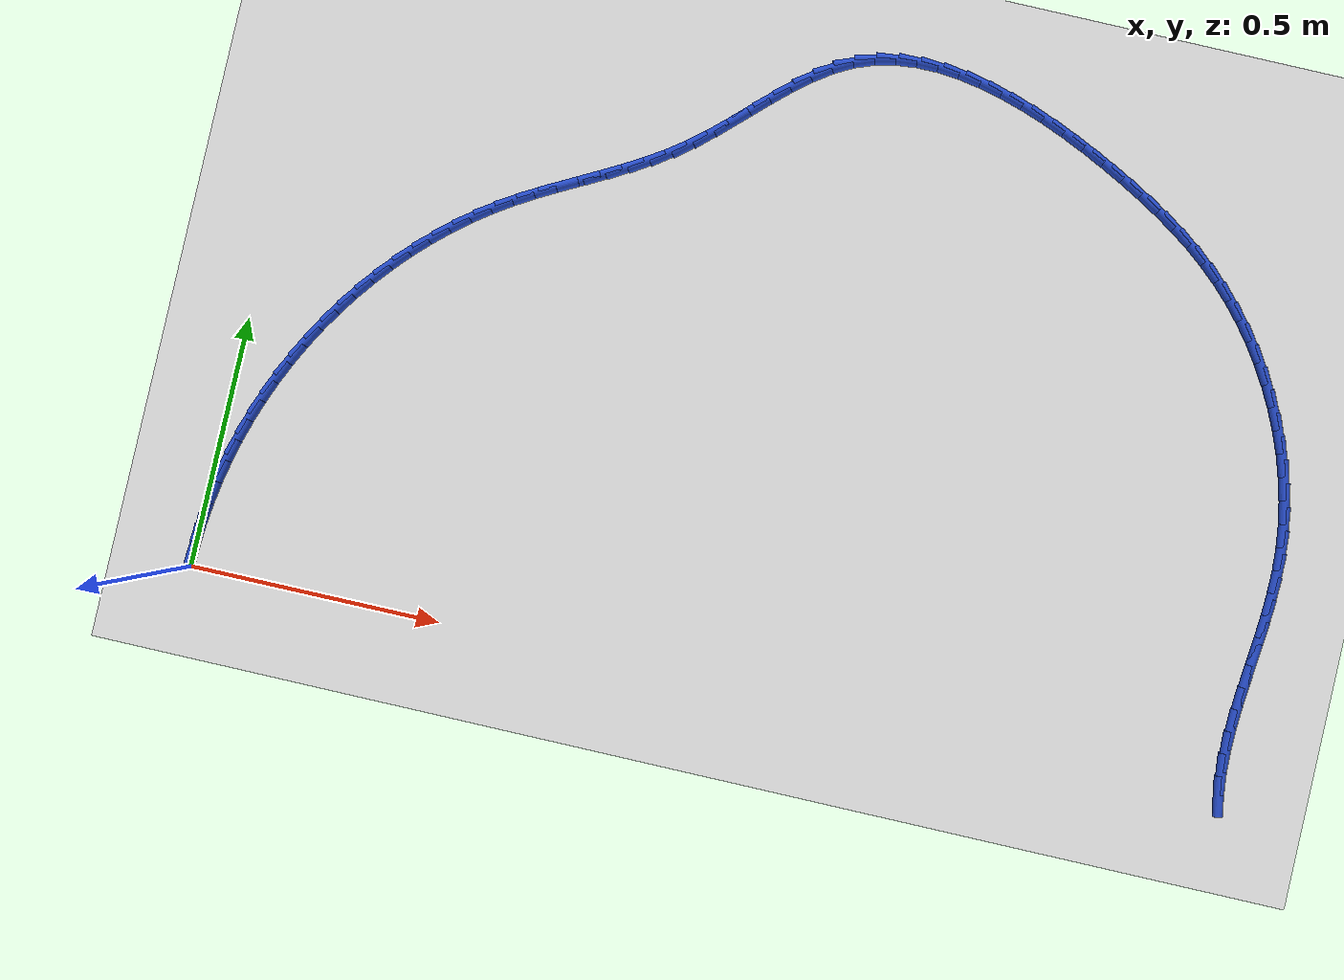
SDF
<sdf version="1.6">
 <world name="default">
  <model name="ground_plane">
   <static>1</static>
   <link name="link">
    <collision name="collision">
     <geometry><plane><normal>0 0 1</normal><size>100 100</size></plane></geometry>
     <surface><friction><ode><mu>100</mu><mu2>50</mu2></ode></friction></surface>
    </collision>
    <visual name="visual">
     <cast_shadows>0</cast_shadows>
     <geometry><plane><normal>0 0 1</normal><size>100 100</size></plane></geometry>
     <material>
      <script><uri>file://media/materials/scripts/gazebo.material</uri><name>Gazebo/WhiteGlow</name></script>
     </material>
    </visual>
   </link>
  </model>
  <model name="line">
   <link name="link_1">
    <pose>0.0012274226117992713 0.045461815861796415 0.01 0 1.57 1.5002485109680428</pose>
    <collision name="collision">
     <geometry><cylinder><radius>0.01</radius><length>0.08</length></cylinder></geometry>
    </collision>
    <visual name="visual">
     <material>
      <script><name>Gazebo/Blue</name><uri>file://media/materials/scripts/gazebo.material</uri></script>
     </material>
     <geometry><cylinder><radius>0.01</radius><length>0.08</length></cylinder></geometry>
    </visual>
   </link>
   <link name="link_2">
    <pose>0.004426673905857419 0.09073525123194078 0.01 0 1.57 1.456372147194954</pose>
    <collision name="collision">
     <geometry><cylinder><radius>0.01</radius><length>0.08</length></cylinder></geometry>
    </collision>
    <visual name="visual">
     <material>
      <script><name>Gazebo/Blue</name><uri>file://media/materials/scripts/gazebo.material</uri></script>
     </material>
     <geometry><cylinder><radius>0.01</radius><length>0.08</length></cylinder></geometry>
    </visual>
   </link>
   <link name="link_3">
    <pose>0.00960134744828331 0.13576131135203842 0.01 0 1.57 1.4121729207926326</pose>
    <collision name="collision">
     <geometry><cylinder><radius>0.01</radius><length>0.08</length></cylinder></geometry>
    </collision>
    <visual name="visual">
     <material>
      <script><name>Gazebo/Blue</name><uri>file://media/materials/scripts/gazebo.material</uri></script>
     </material>
     <geometry><cylinder><radius>0.01</radius><length>0.08</length></cylinder></geometry>
    </visual>
   </link>
   <link name="link_4">
    <pose>0.016755036805185752 0.18048100146369445 0.01 0 1.57 1.367653221788567</pose>
    <collision name="collision">
     <geometry><cylinder><radius>0.01</radius><length>0.08</length></cylinder></geometry>
    </collision>
    <visual name="visual">
     <material>
      <script><name>Gazebo/Blue</name><uri>file://media/materials/scripts/gazebo.material</uri></script>
     </material>
     <geometry><cylinder><radius>0.01</radius><length>0.08</length></cylinder></geometry>
    </visual>
   </link>
   <link name="link_5">
    <pose>0.02589133554267359 0.22483532680851429 0.01 0 1.57 1.322820274719058</pose>
    <collision name="collision">
     <geometry><cylinder><radius>0.01</radius><length>0.08</length></cylinder></geometry>
    </collision>
    <visual name="visual">
     <material>
      <script><name>Gazebo/Blue</name><uri>file://media/materials/scripts/gazebo.material</uri></script>
     </material>
     <geometry><cylinder><radius>0.01</radius><length>0.08</length></cylinder></geometry>
    </visual>
   </link>
   <link name="link_6">
    <pose>0.03701383722685566 0.26876529262810317 0.01 0 1.57 1.2776866372692732</pose>
    <collision name="collision">
     <geometry><cylinder><radius>0.01</radius><length>0.08</length></cylinder></geometry>
    </collision>
    <visual name="visual">
     <material>
      <script><name>Gazebo/Blue</name><uri>file://media/materials/scripts/gazebo.material</uri></script>
     </material>
     <geometry><cylinder><radius>0.01</radius><length>0.08</length></cylinder></geometry>
    </visual>
   </link>
   <link name="link_7">
    <pose>0.05012613542384077 0.31221190416406625 0.01 0 1.57 1.232270625870829</pose>
    <collision name="collision">
     <geometry><cylinder><radius>0.01</radius><length>0.08</length></cylinder></geometry>
    </collision>
    <visual name="visual">
     <material>
      <script><name>Gazebo/Blue</name><uri>file://media/materials/scripts/gazebo.material</uri></script>
     </material>
     <geometry><cylinder><radius>0.01</radius><length>0.08</length></cylinder></geometry>
    </visual>
   </link>
   <link name="link_8">
    <pose>0.06523182369973775 0.35511616665800894 0.01 0 1.57 1.186603532275354</pose>
    <collision name="collision">
     <geometry><cylinder><radius>0.01</radius><length>0.08</length></cylinder></geometry>
    </collision>
    <visual name="visual">
     <material>
      <script><name>Gazebo/Blue</name><uri>file://media/materials/scripts/gazebo.material</uri></script>
     </material>
     <geometry><cylinder><radius>0.01</radius><length>0.08</length></cylinder></geometry>
    </visual>
   </link>
   <link name="link_9">
    <pose>0.08233400079786048 0.3974186996037792 0.01 0 1.57 1.1410511294377066</pose>
    <collision name="collision">
     <geometry><cylinder><radius>0.01</radius><length>0.08</length></cylinder></geometry>
    </collision>
    <visual name="visual">
     <material>
      <script><name>Gazebo/Blue</name><uri>file://media/materials/scripts/gazebo.material</uri></script>
     </material>
     <geometry><cylinder><radius>0.01</radius><length>0.08</length></cylinder></geometry>
    </visual>
   </link>
   <link name="link_10">
    <pose>0.10140935679296745 0.43903953515613786 0.01 0 1.57 1.0960086770704474</pose>
    <collision name="collision">
     <geometry><cylinder><radius>0.01</radius><length>0.08</length></cylinder></geometry>
    </collision>
    <visual name="visual">
     <material>
      <script><name>Gazebo/Blue</name><uri>file://media/materials/scripts/gazebo.material</uri></script>
     </material>
     <geometry><cylinder><radius>0.01</radius><length>0.08</length></cylinder></geometry>
    </visual>
   </link>
   <link name="link_11">
    <pose>0.12239543092023891 0.47986818474865683 0.01 0 1.57 1.0513154567760972</pose>
    <collision name="collision">
     <geometry><cylinder><radius>0.01</radius><length>0.08</length></cylinder></geometry>
    </collision>
    <visual name="visual">
     <material>
      <script><name>Gazebo/Blue</name><uri>file://media/materials/scripts/gazebo.material</uri></script>
     </material>
     <geometry><cylinder><radius>0.01</radius><length>0.08</length></cylinder></geometry>
    </visual>
   </link>
   <link name="link_12">
    <pose>0.14522659465992305 0.5197916903361917 0.01 0 1.57 1.0067676363513318</pose>
    <collision name="collision">
     <geometry><cylinder><radius>0.01</radius><length>0.08</length></cylinder></geometry>
    </collision>
    <visual name="visual">
     <material>
      <script><name>Gazebo/Blue</name><uri>file://media/materials/scripts/gazebo.material</uri></script>
     </material>
     <geometry><cylinder><radius>0.01</radius><length>0.08</length></cylinder></geometry>
    </visual>
   </link>
   <link name="link_13">
    <pose>0.16983721949226793 0.5586970938735976 0.01 0 1.57 0.9621625291410923</pose>
    <collision name="collision">
     <geometry><cylinder><radius>0.01</radius><length>0.08</length></cylinder></geometry>
    </collision>
    <visual name="visual">
     <material>
      <script><name>Gazebo/Blue</name><uri>file://media/materials/scripts/gazebo.material</uri></script>
     </material>
     <geometry><cylinder><radius>0.01</radius><length>0.08</length></cylinder></geometry>
    </visual>
   </link>
   <link name="link_14">
    <pose>0.19616167689752204 0.5964714373157305 0.01 0 1.57 0.9172986936262948</pose>
    <collision name="collision">
     <geometry><cylinder><radius>0.01</radius><length>0.08</length></cylinder></geometry>
    </collision>
    <visual name="visual">
     <material>
      <script><name>Gazebo/Blue</name><uri>file://media/materials/scripts/gazebo.material</uri></script>
     </material>
     <geometry><cylinder><radius>0.01</radius><length>0.08</length></cylinder></geometry>
    </visual>
   </link>
   <link name="link_15">
    <pose>0.22413433835593333 0.6330017626174453 0.01 0 1.57 0.8719761058308376</pose>
    <collision name="collision">
     <geometry><cylinder><radius>0.01</radius><length>0.08</length></cylinder></geometry>
    </collision>
    <visual name="visual">
     <material>
      <script><name>Gazebo/Blue</name><uri>file://media/materials/scripts/gazebo.material</uri></script>
     </material>
     <geometry><cylinder><radius>0.01</radius><length>0.08</length></cylinder></geometry>
    </visual>
   </link>
   <link name="link_16">
    <pose>0.25368957534775016 0.6681751117335978 0.01 0 1.57 0.8259965544912151</pose>
    <collision name="collision">
     <geometry><cylinder><radius>0.01</radius><length>0.08</length></cylinder></geometry>
    </collision>
    <visual name="visual">
     <material>
      <script><name>Gazebo/Blue</name><uri>file://media/materials/scripts/gazebo.material</uri></script>
     </material>
     <geometry><cylinder><radius>0.01</radius><length>0.08</length></cylinder></geometry>
    </visual>
   </link>
   <link name="link_17">
    <pose>0.28476175935322073 0.7018785266190436 0.01 0 1.57 0.7791644137322374</pose>
    <collision name="collision">
     <geometry><cylinder><radius>0.01</radius><length>0.08</length></cylinder></geometry>
    </collision>
    <visual name="visual">
     <material>
      <script><name>Gazebo/Blue</name><uri>file://media/materials/scripts/gazebo.material</uri></script>
     </material>
     <geometry><cylinder><radius>0.01</radius><length>0.08</length></cylinder></geometry>
    </visual>
   </link>
   <link name="link_18">
    <pose>0.31728526185259315 0.7339990492286378 0.01 0 1.57 0.7312879565658935</pose>
    <collision name="collision">
     <geometry><cylinder><radius>0.01</radius><length>0.08</length></cylinder></geometry>
    </collision>
    <visual name="visual">
     <material>
      <script><name>Gazebo/Blue</name><uri>file://media/materials/scripts/gazebo.material</uri></script>
     </material>
     <geometry><cylinder><radius>0.01</radius><length>0.08</length></cylinder></geometry>
    </visual>
   </link>
   <link name="link_19">
    <pose>0.3511944543261158 0.764423721517236 0.01 0 1.57 0.682181381445582</pose>
    <collision name="collision">
     <geometry><cylinder><radius>0.01</radius><length>0.08</length></cylinder></geometry>
    </collision>
    <visual name="visual">
     <material>
      <script><name>Gazebo/Blue</name><uri>file://media/materials/scripts/gazebo.material</uri></script>
     </material>
     <geometry><cylinder><radius>0.01</radius><length>0.08</length></cylinder></geometry>
    </visual>
   </link>
   <link name="link_20">
    <pose>0.38642370825403666 0.7930395854396936 0.01 0 1.57 0.6316677280078654</pose>
    <collision name="collision">
     <geometry><cylinder><radius>0.01</radius><length>0.08</length></cylinder></geometry>
    </collision>
    <visual name="visual">
     <material>
      <script><name>Gazebo/Blue</name><uri>file://media/materials/scripts/gazebo.material</uri></script>
     </material>
     <geometry><cylinder><radius>0.01</radius><length>0.08</length></cylinder></geometry>
    </visual>
   </link>
   <link name="link_21">
    <pose>0.4229073951166042 0.8197336829508661 0.01 0 1.57 0.5801251381507768</pose>
    <collision name="collision">
     <geometry><cylinder><radius>0.01</radius><length>0.08</length></cylinder></geometry>
    </collision>
    <visual name="visual">
     <material>
      <script><name>Gazebo/Blue</name><uri>file://media/materials/scripts/gazebo.material</uri></script>
     </material>
     <geometry><cylinder><radius>0.01</radius><length>0.08</length></cylinder></geometry>
    </visual>
   </link>
   <link name="link_22">
    <pose>0.4605715760902958 0.844416802883559 0.01 0 1.57 0.5359944190135996</pose>
    <collision name="collision">
     <geometry><cylinder><radius>0.01</radius><length>0.08</length></cylinder></geometry>
    </collision>
    <visual name="visual">
     <material>
      <script><name>Gazebo/Blue</name><uri>file://media/materials/scripts/gazebo.material</uri></script>
     </material>
     <geometry><cylinder><radius>0.01</radius><length>0.08</length></cylinder></geometry>
    </visual>
   </link>
   <link name="link_23">
    <pose>0.49921286204348236 0.8673696412066021 0.01 0 1.57 0.5062288535295115</pose>
    <collision name="collision">
     <geometry><cylinder><radius>0.01</radius><length>0.08</length></cylinder></geometry>
    </collision>
    <visual name="visual">
     <material>
      <script><name>Gazebo/Blue</name><uri>file://media/materials/scripts/gazebo.material</uri></script>
     </material>
     <geometry><cylinder><radius>0.01</radius><length>0.08</length></cylinder></geometry>
    </visual>
   </link>
   <link name="link_24">
    <pose>0.5385255362949087 0.8891652971389342 0.01 0 1.57 0.4911193388827673</pose>
    <collision name="collision">
     <geometry><cylinder><radius>0.01</radius><length>0.08</length></cylinder></geometry>
    </collision>
    <visual name="visual">
     <material>
      <script><name>Gazebo/Blue</name><uri>file://media/materials/scripts/gazebo.material</uri></script>
     </material>
     <geometry><cylinder><radius>0.01</radius><length>0.08</length></cylinder></geometry>
    </visual>
   </link>
   <link name="link_25">
    <pose>0.5782010905877437 0.910384846888824 0.01 0 1.57 0.4906473573979358</pose>
    <collision name="collision">
     <geometry><cylinder><radius>0.01</radius><length>0.08</length></cylinder></geometry>
    </collision>
    <visual name="visual">
     <material>
      <script><name>Gazebo/Blue</name><uri>file://media/materials/scripts/gazebo.material</uri></script>
     </material>
     <geometry><cylinder><radius>0.01</radius><length>0.08</length></cylinder></geometry>
    </visual>
   </link>
   <link name="link_26">
    <pose>0.6179310166651563 0.9316093666645406 0.01 0 1.57 0.5047643014628631</pose>
    <collision name="collision">
     <geometry><cylinder><radius>0.01</radius><length>0.08</length></cylinder></geometry>
    </collision>
    <visual name="visual">
     <material>
      <script><name>Gazebo/Blue</name><uri>file://media/materials/scripts/gazebo.material</uri></script>
     </material>
     <geometry><cylinder><radius>0.01</radius><length>0.08</length></cylinder></geometry>
    </visual>
   </link>
   <link name="link_27">
    <pose>0.6574068062703151 0.9534199326743527 0.01 0 1.57 0.5333949445838942</pose>
    <collision name="collision">
     <geometry><cylinder><radius>0.01</radius><length>0.08</length></cylinder></geometry>
    </collision>
    <visual name="visual">
     <material>
      <script><name>Gazebo/Blue</name><uri>file://media/materials/scripts/gazebo.material</uri></script>
     </material>
     <geometry><cylinder><radius>0.01</radius><length>0.08</length></cylinder></geometry>
    </visual>
   </link>
   <link name="link_28">
    <pose>0.6963199511463887 0.9763976211265286 0.01 0 1.57 0.5763492082743317</pose>
    <collision name="collision">
     <geometry><cylinder><radius>0.01</radius><length>0.08</length></cylinder></geometry>
    </collision>
    <visual name="visual">
     <material>
      <script><name>Gazebo/Blue</name><uri>file://media/materials/scripts/gazebo.material</uri></script>
     </material>
     <geometry><cylinder><radius>0.01</radius><length>0.08</length></cylinder></geometry>
    </visual>
   </link>
   <link name="link_29">
    <pose>0.734361943036546 1.0011235082293375 0.01 0 1.57 0.6331506874559334</pose>
    <collision name="collision">
     <geometry><cylinder><radius>0.01</radius><length>0.08</length></cylinder></geometry>
    </collision>
    <visual name="visual">
     <material>
      <script><name>Gazebo/Blue</name><uri>file://media/materials/scripts/gazebo.material</uri></script>
     </material>
     <geometry><cylinder><radius>0.01</radius><length>0.08</length></cylinder></geometry>
    </visual>
   </link>
   <link name="link_30">
    <pose>0.7712242736839553 1.0281786701910478 0.01 0 1.57 0.6967573670954323</pose>
    <collision name="collision">
     <geometry><cylinder><radius>0.01</radius><length>0.08</length></cylinder></geometry>
    </collision>
    <visual name="visual">
     <material>
      <script><name>Gazebo/Blue</name><uri>file://media/materials/scripts/gazebo.material</uri></script>
     </material>
     <geometry><cylinder><radius>0.01</radius><length>0.08</length></cylinder></geometry>
    </visual>
   </link>
   <link name="link_31">
    <pose>0.8067190815543362 1.0578793177478278 0.01 0 1.57 0.7418646541711746</pose>
    <collision name="collision">
     <geometry><cylinder><radius>0.01</radius><length>0.08</length></cylinder></geometry>
    </collision>
    <visual name="visual">
     <material>
      <script><name>Gazebo/Blue</name><uri>file://media/materials/scripts/gazebo.material</uri></script>
     </material>
     <geometry><cylinder><radius>0.01</radius><length>0.08</length></cylinder></geometry>
    </visual>
   </link>
   <link name="link_32">
    <pose>0.8411586392800531 1.0894436767974454 0.01 0 1.57 0.7632778604231394</pose>
    <collision name="collision">
     <geometry><cylinder><radius>0.01</radius><length>0.08</length></cylinder></geometry>
    </collision>
    <visual name="visual">
     <material>
      <script><name>Gazebo/Blue</name><uri>file://media/materials/scripts/gazebo.material</uri></script>
     </material>
     <geometry><cylinder><radius>0.01</radius><length>0.08</length></cylinder></geometry>
    </visual>
   </link>
   <link name="link_33">
    <pose>0.8749847981929068 1.121805498676944 0.01 0 1.57 0.7616515718498925</pose>
    <collision name="collision">
     <geometry><cylinder><radius>0.01</radius><length>0.08</length></cylinder></geometry>
    </collision>
    <visual name="visual">
     <material>
      <script><name>Gazebo/Blue</name><uri>file://media/materials/scripts/gazebo.material</uri></script>
     </material>
     <geometry><cylinder><radius>0.01</radius><length>0.08</length></cylinder></geometry>
    </visual>
   </link>
   <link name="link_34">
    <pose>0.9086394098356655 1.153898534260214 0.01 0 1.57 0.7364766078494152</pose>
    <collision name="collision">
     <geometry><cylinder><radius>0.01</radius><length>0.08</length></cylinder></geometry>
    </collision>
    <visual name="visual">
     <material>
      <script><name>Gazebo/Blue</name><uri>file://media/materials/scripts/gazebo.material</uri></script>
     </material>
     <geometry><cylinder><radius>0.01</radius><length>0.08</length></cylinder></geometry>
    </visual>
   </link>
   <link name="link_35">
    <pose>0.9425643257510968 1.1846565344211464 0.01 0 1.57 0.6860285060387574</pose>
    <collision name="collision">
     <geometry><cylinder><radius>0.01</radius><length>0.08</length></cylinder></geometry>
    </collision>
    <visual name="visual">
     <material>
      <script><name>Gazebo/Blue</name><uri>file://media/materials/scripts/gazebo.material</uri></script>
     </material>
     <geometry><cylinder><radius>0.01</radius><length>0.08</length></cylinder></geometry>
    </visual>
   </link>
   <link name="link_36">
    <pose>0.9772013974819684 1.2130132500336317 0.01 0 1.57 0.6076332740044071</pose>
    <collision name="collision">
     <geometry><cylinder><radius>0.01</radius><length>0.08</length></cylinder></geometry>
    </collision>
    <visual name="visual">
     <material>
      <script><name>Gazebo/Blue</name><uri>file://media/materials/scripts/gazebo.material</uri></script>
     </material>
     <geometry><cylinder><radius>0.01</radius><length>0.08</length></cylinder></geometry>
    </visual>
   </link>
   <link name="link_37">
    <pose>1.012992476571048 1.2379024319715608 0.01 0 1.57 0.49857385690341627</pose>
    <collision name="collision">
     <geometry><cylinder><radius>0.01</radius><length>0.08</length></cylinder></geometry>
    </collision>
    <visual name="visual">
     <material>
      <script><name>Gazebo/Blue</name><uri>file://media/materials/scripts/gazebo.material</uri></script>
     </material>
     <geometry><cylinder><radius>0.01</radius><length>0.08</length></cylinder></geometry>
    </visual>
   </link>
   <link name="link_38">
    <pose>1.0503794145611038 1.2582578311088246 0.01 0 1.57 0.3615146965251408</pose>
    <collision name="collision">
     <geometry><cylinder><radius>0.01</radius><length>0.08</length></cylinder></geometry>
    </collision>
    <visual name="visual">
     <material>
      <script><name>Gazebo/Blue</name><uri>file://media/materials/scripts/gazebo.material</uri></script>
     </material>
     <geometry><cylinder><radius>0.01</radius><length>0.08</length></cylinder></geometry>
    </visual>
   </link>
   <link name="link_39">
    <pose>1.089740830717486 1.2731416868704672 0.01 0 1.57 0.22454168957132323</pose>
    <collision name="collision">
     <geometry><cylinder><radius>0.01</radius><length>0.08</length></cylinder></geometry>
    </collision>
    <visual name="visual">
     <material>
      <script><name>Gazebo/Blue</name><uri>file://media/materials/scripts/gazebo.material</uri></script>
     </material>
     <geometry><cylinder><radius>0.01</radius><length>0.08</length></cylinder></geometry>
    </visual>
   </link>
   <link name="link_40">
    <pose>1.1309896061982043 1.282562622665678 0.01 0 1.57 0.1021054157653638</pose>
    <collision name="collision">
     <geometry><cylinder><radius>0.01</radius><length>0.08</length></cylinder></geometry>
    </collision>
    <visual name="visual">
     <material>
      <script><name>Gazebo/Blue</name><uri>file://media/materials/scripts/gazebo.material</uri></script>
     </material>
     <geometry><cylinder><radius>0.01</radius><length>0.08</length></cylinder></geometry>
    </visual>
   </link>
   <link name="link_41">
    <pose>1.1738304967151638 1.28695217466467 0.01 0 1.57 -0.004720008758100414</pose>
    <collision name="collision">
     <geometry><cylinder><radius>0.01</radius><length>0.08</length></cylinder></geometry>
    </collision>
    <visual name="visual">
     <material>
      <script><name>Gazebo/Blue</name><uri>file://media/materials/scripts/gazebo.material</uri></script>
     </material>
     <geometry><cylinder><radius>0.01</radius><length>0.08</length></cylinder></geometry>
    </visual>
   </link>
   <link name="link_42">
    <pose>1.2179672894650235 1.2867438470692596 0.01 0 1.57 -0.09657597802571115</pose>
    <collision name="collision">
     <geometry><cylinder><radius>0.01</radius><length>0.08</length></cylinder></geometry>
    </collision>
    <visual name="visual">
     <material>
      <script><name>Gazebo/Blue</name><uri>file://media/materials/scripts/gazebo.material</uri></script>
     </material>
     <geometry><cylinder><radius>0.01</radius><length>0.08</length></cylinder></geometry>
    </visual>
   </link>
   <link name="link_43">
    <pose>1.2631037716444435 1.2823711440812653 0.01 0 1.57 -0.1749719595927593</pose>
    <collision name="collision">
     <geometry><cylinder><radius>0.01</radius><length>0.08</length></cylinder></geometry>
    </collision>
    <visual name="visual">
     <material>
      <script><name>Gazebo/Blue</name><uri>file://media/materials/scripts/gazebo.material</uri></script>
     </material>
     <geometry><cylinder><radius>0.01</radius><length>0.08</length></cylinder></geometry>
    </visual>
   </link>
   <link name="link_44">
    <pose>1.3089437304500848 1.2742675699025054 0.01 0 1.57 -0.2417022427048707</pose>
    <collision name="collision">
     <geometry><cylinder><radius>0.01</radius><length>0.08</length></cylinder></geometry>
    </collision>
    <visual name="visual">
     <material>
      <script><name>Gazebo/Blue</name><uri>file://media/materials/scripts/gazebo.material</uri></script>
     </material>
     <geometry><cylinder><radius>0.01</radius><length>0.08</length></cylinder></geometry>
    </visual>
   </link>
   <link name="link_45">
    <pose>1.355190953078606 1.2628666287347972 0.01 0 1.57 -0.29851311467358155</pose>
    <collision name="collision">
     <geometry><cylinder><radius>0.01</radius><length>0.08</length></cylinder></geometry>
    </collision>
    <visual name="visual">
     <material>
      <script><name>Gazebo/Blue</name><uri>file://media/materials/scripts/gazebo.material</uri></script>
     </material>
     <geometry><cylinder><radius>0.01</radius><length>0.08</length></cylinder></geometry>
    </visual>
   </link>
   <link name="link_46">
    <pose>1.4015492267266678 1.2486018247799584 0.01 0 1.57 -0.3469514701376471</pose>
    <collision name="collision">
     <geometry><cylinder><radius>0.01</radius><length>0.08</length></cylinder></geometry>
    </collision>
    <visual name="visual">
     <material>
      <script><name>Gazebo/Blue</name><uri>file://media/materials/scripts/gazebo.material</uri></script>
     </material>
     <geometry><cylinder><radius>0.01</radius><length>0.08</length></cylinder></geometry>
    </visual>
   </link>
   <link name="link_47">
    <pose>1.4477223385909295 1.2319066622398078 0.01 0 1.57 -0.3883176417075081</pose>
    <collision name="collision">
     <geometry><cylinder><radius>0.01</radius><length>0.08</length></cylinder></geometry>
    </collision>
    <visual name="visual">
     <material>
      <script><name>Gazebo/Blue</name><uri>file://media/materials/scripts/gazebo.material</uri></script>
     </material>
     <geometry><cylinder><radius>0.01</radius><length>0.08</length></cylinder></geometry>
    </visual>
   </link>
   <link name="link_48">
    <pose>1.4934140758680519 1.2132146453161623 0.01 0 1.57 -0.4236682960750707</pose>
    <collision name="collision">
     <geometry><cylinder><radius>0.01</radius><length>0.08</length></cylinder></geometry>
    </collision>
    <visual name="visual">
     <material>
      <script><name>Gazebo/Blue</name><uri>file://media/materials/scripts/gazebo.material</uri></script>
     </material>
     <geometry><cylinder><radius>0.01</radius><length>0.08</length></cylinder></geometry>
    </visual>
   </link>
   <link name="link_49">
    <pose>1.538328225754694 1.1929592782108407 0.01 0 1.57 -0.45383804358030894</pose>
    <collision name="collision">
     <geometry><cylinder><radius>0.01</radius><length>0.08</length></cylinder></geometry>
    </collision>
    <visual name="visual">
     <material>
      <script><name>Gazebo/Blue</name><uri>file://media/materials/scripts/gazebo.material</uri></script>
     </material>
     <geometry><cylinder><radius>0.01</radius><length>0.08</length></cylinder></geometry>
    </visual>
   </link>
   <link name="link_50">
    <pose>1.5821685754475168 1.1715740651256612 0.01 0 1.57 -0.4796083093968417</pose>
    <collision name="collision">
     <geometry><cylinder><radius>0.01</radius><length>0.08</length></cylinder></geometry>
    </collision>
    <visual name="visual">
     <material>
      <script><name>Gazebo/Blue</name><uri>file://media/materials/scripts/gazebo.material</uri></script>
     </material>
     <geometry><cylinder><radius>0.01</radius><length>0.08</length></cylinder></geometry>
    </visual>
   </link>
   <link name="link_51">
    <pose>1.6246428211755533 1.14948265380952 0.01 0 1.57 -0.5059911623043839</pose>
    <collision name="collision">
     <geometry><cylinder><radius>0.01</radius><length>0.08</length></cylinder></geometry>
    </collision>
    <visual name="visual">
     <material>
      <script><name>Gazebo/Blue</name><uri>file://media/materials/scripts/gazebo.material</uri></script>
     </material>
     <geometry><cylinder><radius>0.01</radius><length>0.08</length></cylinder></geometry>
    </visual>
   </link>
   <link name="link_52">
    <pose>1.6655818672639306 1.1267980282249066 0.01 0 1.57 -0.5386048622359725</pose>
    <collision name="collision">
     <geometry><cylinder><radius>0.01</radius><length>0.08</length></cylinder></geometry>
    </collision>
    <visual name="visual">
     <material>
      <script><name>Gazebo/Blue</name><uri>file://media/materials/scripts/gazebo.material</uri></script>
     </material>
     <geometry><cylinder><radius>0.01</radius><length>0.08</length></cylinder></geometry>
    </visual>
   </link>
   <link name="link_53">
    <pose>1.7049617757692292 1.1032671635093199 0.01 0 1.57 -0.5778203242649008</pose>
    <collision name="collision">
     <geometry><cylinder><radius>0.01</radius><length>0.08</length></cylinder></geometry>
    </collision>
    <visual name="visual">
     <material>
      <script><name>Gazebo/Blue</name><uri>file://media/materials/scripts/gazebo.material</uri></script>
     </material>
     <geometry><cylinder><radius>0.01</radius><length>0.08</length></cylinder></geometry>
    </visual>
   </link>
   <link name="link_54">
    <pose>1.7427669447291079 1.0786160159912048 0.01 0 1.57 -0.6234917984341739</pose>
    <collision name="collision">
     <geometry><cylinder><radius>0.01</radius><length>0.08</length></cylinder></geometry>
    </collision>
    <visual name="visual">
     <material>
      <script><name>Gazebo/Blue</name><uri>file://media/materials/scripts/gazebo.material</uri></script>
     </material>
     <geometry><cylinder><radius>0.01</radius><length>0.08</length></cylinder></geometry>
    </visual>
   </link>
   <link name="link_55">
    <pose>1.7789817721812275 1.0525705419990066 0.01 0 1.57 -0.6752118293213302</pose>
    <collision name="collision">
     <geometry><cylinder><radius>0.01</radius><length>0.08</length></cylinder></geometry>
    </collision>
    <visual name="visual">
     <material>
      <script><name>Gazebo/Blue</name><uri>file://media/materials/scripts/gazebo.material</uri></script>
     </material>
     <geometry><cylinder><radius>0.01</radius><length>0.08</length></cylinder></geometry>
    </visual>
   </link>
   <link name="link_56">
    <pose>1.8135906561632495 1.0248566978611697 0.01 0 1.57 -0.7322730804000313</pose>
    <collision name="collision">
     <geometry><cylinder><radius>0.01</radius><length>0.08</length></cylinder></geometry>
    </collision>
    <visual name="visual">
     <material>
      <script><name>Gazebo/Blue</name><uri>file://media/materials/scripts/gazebo.material</uri></script>
     </material>
     <geometry><cylinder><radius>0.01</radius><length>0.08</length></cylinder></geometry>
    </visual>
   </link>
   <link name="link_57">
    <pose>1.8465779947128316 0.9952004399061394 0.01 0 1.57 -0.7935373932886136</pose>
    <collision name="collision">
     <geometry><cylinder><radius>0.01</radius><length>0.08</length></cylinder></geometry>
    </collision>
    <visual name="visual">
     <material>
      <script><name>Gazebo/Blue</name><uri>file://media/materials/scripts/gazebo.material</uri></script>
     </material>
     <geometry><cylinder><radius>0.01</radius><length>0.08</length></cylinder></geometry>
    </visual>
   </link>
   <link name="link_58">
    <pose>1.877925598969698 0.9633383460235726 0.01 0 1.57 -0.8553717081865992</pose>
    <collision name="collision">
     <geometry><cylinder><radius>0.01</radius><length>0.08</length></cylinder></geometry>
    </collision>
    <visual name="visual">
     <material>
      <script><name>Gazebo/Blue</name><uri>file://media/materials/scripts/gazebo.material</uri></script>
     </material>
     <geometry><cylinder><radius>0.01</radius><length>0.08</length></cylinder></geometry>
    </visual>
   </link>
   <link name="link_59">
    <pose>1.9075590341004098 0.9292379348132972 0.01 0 1.57 -0.9153683888444641</pose>
    <collision name="collision">
     <geometry><cylinder><radius>0.01</radius><length>0.08</length></cylinder></geometry>
    </collision>
    <visual name="visual">
     <material>
      <script><name>Gazebo/Blue</name><uri>file://media/materials/scripts/gazebo.material</uri></script>
     </material>
     <geometry><cylinder><radius>0.01</radius><length>0.08</length></cylinder></geometry>
    </visual>
   </link>
   <link name="link_60">
    <pose>1.9353493691079897 0.8930904810305077 0.01 0 1.57 -0.9739775218266095</pose>
    <collision name="collision">
     <geometry><cylinder><radius>0.01</radius><length>0.08</length></cylinder></geometry>
    </collision>
    <visual name="visual">
     <material>
      <script><name>Gazebo/Blue</name><uri>file://media/materials/scripts/gazebo.material</uri></script>
     </material>
     <geometry><cylinder><radius>0.01</radius><length>0.08</length></cylinder></geometry>
    </visual>
   </link>
   <link name="link_61">
    <pose>1.961165436169029 0.8550964436307218 0.01 0 1.57 -1.031740676865908</pose>
    <collision name="collision">
     <geometry><cylinder><radius>0.01</radius><length>0.08</length></cylinder></geometry>
    </collision>
    <visual name="visual">
     <material>
      <script><name>Gazebo/Blue</name><uri>file://media/materials/scripts/gazebo.material</uri></script>
     </material>
     <geometry><cylinder><radius>0.01</radius><length>0.08</length></cylinder></geometry>
    </visual>
   </link>
   <link name="link_62">
    <pose>1.9848760674601162 0.8154562815694585 0.01 0 1.57 -1.0891834034690284</pose>
    <collision name="collision">
     <geometry><cylinder><radius>0.01</radius><length>0.08</length></cylinder></geometry>
    </collision>
    <visual name="visual">
     <material>
      <script><name>Gazebo/Blue</name><uri>file://media/materials/scripts/gazebo.material</uri></script>
     </material>
     <geometry><cylinder><radius>0.01</radius><length>0.08</length></cylinder></geometry>
    </visual>
   </link>
   <link name="link_63">
    <pose>2.0063500951578437 0.7743704538022356 0.01 0 1.57 -1.1468174837628655</pose>
    <collision name="collision">
     <geometry><cylinder><radius>0.01</radius><length>0.08</length></cylinder></geometry>
    </collision>
    <visual name="visual">
     <material>
      <script><name>Gazebo/Blue</name><uri>file://media/materials/scripts/gazebo.material</uri></script>
     </material>
     <geometry><cylinder><radius>0.01</radius><length>0.08</length></cylinder></geometry>
    </visual>
   </link>
   <link name="link_64">
    <pose>2.0254563514387995 0.7320394192845711 0.01 0 1.57 -1.2051432167218241</pose>
    <collision name="collision">
     <geometry><cylinder><radius>0.01</radius><length>0.08</length></cylinder></geometry>
    </collision>
    <visual name="visual">
     <material>
      <script><name>Gazebo/Blue</name><uri>file://media/materials/scripts/gazebo.material</uri></script>
     </material>
     <geometry><cylinder><radius>0.01</radius><length>0.08</length></cylinder></geometry>
    </visual>
   </link>
   <link name="link_65">
    <pose>2.042063668479575 0.6886636369719832 0.01 0 1.57 -1.2646506255794638</pose>
    <collision name="collision">
     <geometry><cylinder><radius>0.01</radius><length>0.08</length></cylinder></geometry>
    </collision>
    <visual name="visual">
     <material>
      <script><name>Gazebo/Blue</name><uri>file://media/materials/scripts/gazebo.material</uri></script>
     </material>
     <geometry><cylinder><radius>0.01</radius><length>0.08</length></cylinder></geometry>
    </visual>
   </link>
   <link name="link_66">
    <pose>2.056040878456761 0.6444435658199897 0.01 0 1.57 -1.3258185063482864</pose>
    <collision name="collision">
     <geometry><cylinder><radius>0.01</radius><length>0.08</length></cylinder></geometry>
    </collision>
    <visual name="visual">
     <material>
      <script><name>Gazebo/Blue</name><uri>file://media/materials/scripts/gazebo.material</uri></script>
     </material>
     <geometry><cylinder><radius>0.01</radius><length>0.08</length></cylinder></geometry>
    </visual>
   </link>
   <link name="link_67">
    <pose>2.067256813546946 0.5995796647841094 0.01 0 1.57 -1.3891101634029779</pose>
    <collision name="collision">
     <geometry><cylinder><radius>0.01</radius><length>0.08</length></cylinder></geometry>
    </collision>
    <visual name="visual">
     <material>
      <script><name>Gazebo/Blue</name><uri>file://media/materials/scripts/gazebo.material</uri></script>
     </material>
     <geometry><cylinder><radius>0.01</radius><length>0.08</length></cylinder></geometry>
    </visual>
   </link>
   <link name="link_68">
    <pose>2.0755803059267213 0.5542723928198596 0.01 0 1.57 -1.4549645708984056</pose>
    <collision name="collision">
     <geometry><cylinder><radius>0.01</radius><length>0.08</length></cylinder></geometry>
    </collision>
    <visual name="visual">
     <material>
      <script><name>Gazebo/Blue</name><uri>file://media/materials/scripts/gazebo.material</uri></script>
     </material>
     <geometry><cylinder><radius>0.01</radius><length>0.08</length></cylinder></geometry>
    </visual>
   </link>
   <link name="link_69">
    <pose>2.0808801877726766 0.5087222088827593 0.01 0 1.57 -1.5218819057155206</pose>
    <collision name="collision">
     <geometry><cylinder><radius>0.01</radius><length>0.08</length></cylinder></geometry>
    </collision>
    <visual name="visual">
     <material>
      <script><name>Gazebo/Blue</name><uri>file://media/materials/scripts/gazebo.material</uri></script>
     </material>
     <geometry><cylinder><radius>0.01</radius><length>0.08</length></cylinder></geometry>
    </visual>
   </link>
   <link name="link_70">
    <pose>2.0831130327107257 0.4631106321511463 0.01 0 1.57 1.5624668615987558</pose>
    <collision name="collision">
     <geometry><cylinder><radius>0.01</radius><length>0.08</length></cylinder></geometry>
    </collision>
    <visual name="visual">
     <material>
      <script><name>Gazebo/Blue</name><uri>file://media/materials/scripts/gazebo.material</uri></script>
     </material>
     <geometry><cylinder><radius>0.01</radius><length>0.08</length></cylinder></geometry>
    </visual>
   </link>
   <link name="link_71">
    <pose>2.0827332094438664 0.41751172828037597 0.01 0 1.57 1.5189704209391668</pose>
    <collision name="collision">
     <geometry><cylinder><radius>0.01</radius><length>0.08</length></cylinder></geometry>
    </collision>
    <visual name="visual">
     <material>
      <script><name>Gazebo/Blue</name><uri>file://media/materials/scripts/gazebo.material</uri></script>
     </material>
     <geometry><cylinder><radius>0.01</radius><length>0.08</length></cylinder></geometry>
    </visual>
   </link>
   <link name="link_72">
    <pose>2.080370422944099 0.37196171502276654 0.01 0 1.57 1.4892476107265884</pose>
    <collision name="collision">
     <geometry><cylinder><radius>0.01</radius><length>0.08</length></cylinder></geometry>
    </collision>
    <visual name="visual">
     <material>
      <script><name>Gazebo/Blue</name><uri>file://media/materials/scripts/gazebo.material</uri></script>
     </material>
     <geometry><cylinder><radius>0.01</radius><length>0.08</length></cylinder></geometry>
    </visual>
   </link>
   <link name="link_73">
    <pose>2.076654574182375 0.32649676782250664 0.01 0 1.57 1.4732103422160938</pose>
    <collision name="collision">
     <geometry><cylinder><radius>0.01</radius><length>0.08</length></cylinder></geometry>
    </collision>
    <visual name="visual">
     <material>
      <script><name>Gazebo/Blue</name><uri>file://media/materials/scripts/gazebo.material</uri></script>
     </material>
     <geometry><cylinder><radius>0.01</radius><length>0.08</length></cylinder></geometry>
    </visual>
   </link>
   <link name="link_74">
    <pose>2.0722155641296447 0.28115306212378616 0.01 0 1.57 1.4708287776821645</pose>
    <collision name="collision">
     <geometry><cylinder><radius>0.01</radius><length>0.08</length></cylinder></geometry>
    </collision>
    <visual name="visual">
     <material>
      <script><name>Gazebo/Blue</name><uri>file://media/materials/scripts/gazebo.material</uri></script>
     </material>
     <geometry><cylinder><radius>0.01</radius><length>0.08</length></cylinder></geometry>
    </visual>
   </link>
   <link name="link_75">
    <pose>2.0676832937568594 0.23596677337079408 0.01 0 1.57 1.4822225009638257</pose>
    <collision name="collision">
     <geometry><cylinder><radius>0.01</radius><length>0.08</length></cylinder></geometry>
    </collision>
    <visual name="visual">
     <material>
      <script><name>Gazebo/Blue</name><uri>file://media/materials/scripts/gazebo.material</uri></script>
     </material>
     <geometry><cylinder><radius>0.01</radius><length>0.08</length></cylinder></geometry>
    </visual>
   </link>
   <link name="link_76">
    <pose>2.0636876640349713 0.1909740770077193 0.01 0 1.57 1.5076786908310855</pose>
    <collision name="collision">
     <geometry><cylinder><radius>0.01</radius><length>0.08</length></cylinder></geometry>
    </collision>
    <visual name="visual">
     <material>
      <script><name>Gazebo/Blue</name><uri>file://media/materials/scripts/gazebo.material</uri></script>
     </material>
     <geometry><cylinder><radius>0.01</radius><length>0.08</length></cylinder></geometry>
    </visual>
   </link>
   <link name="link_77">
    <pose>2.060858575934931 0.14621114847875186 0.01 0 1.57 1.5475934024239315</pose>
    <collision name="collision">
     <geometry><cylinder><radius>0.01</radius><length>0.08</length></cylinder></geometry>
    </collision>
    <visual name="visual">
     <material>
      <script><name>Gazebo/Blue</name><uri>file://media/materials/scripts/gazebo.material</uri></script>
     </material>
     <geometry><cylinder><radius>0.01</radius><length>0.08</length></cylinder></geometry>
    </visual>
   </link>
   <link name="link_78">
    <pose>2.0598259304276896 0.10171416322808027 0.01 0 1.57 -1.5392714814388264</pose>
    <collision name="collision">
     <geometry><cylinder><radius>0.01</radius><length>0.08</length></cylinder></geometry>
    </collision>
    <visual name="visual">
     <material>
      <script><name>Gazebo/Blue</name><uri>file://media/materials/scripts/gazebo.material</uri></script>
     </material>
     <geometry><cylinder><radius>0.01</radius><length>0.08</length></cylinder></geometry>
    </visual>
   </link>
   <link name="link_79">
    <pose>2.0612196284841993 0.05751929669989466 0.01 0 1.57 -1.4708021019051563</pose>
    <collision name="collision">
     <geometry><cylinder><radius>0.01</radius><length>0.08</length></cylinder></geometry>
    </collision>
    <visual name="visual">
     <material>
      <script><name>Gazebo/Blue</name><uri>file://media/materials/scripts/gazebo.material</uri></script>
     </material>
     <geometry><cylinder><radius>0.01</radius><length>0.08</length></cylinder></geometry>
    </visual>
   </link>
   <link name="link_80">
    <pose>2.06562027473492 0.013657070229526523 0.01 0 1.57 -1.4053119309565243</pose>
    <collision name="collision">
     <geometry><cylinder><radius>0.01</radius><length>0.08</length></cylinder></geometry>
    </collision>
    <visual name="visual">
     <material>
      <script><name>Gazebo/Blue</name><uri>file://media/materials/scripts/gazebo.material</uri></script>
     </material>
     <geometry><cylinder><radius>0.01</radius><length>0.08</length></cylinder></geometry>
    </visual>
   </link>
   <link name="link_161">
    <pose>0.0012197371779712508 0.04544685790288386 0.01 0 1.57 1.5439640111150377</pose>
    <collision name="collision">
     <geometry><cylinder><radius>0.01</radius><length>0.08</length></cylinder></geometry>
    </collision>
    <visual name="visual">
     <material>
      <script><name>Gazebo/Blue</name><uri>file://media/materials/scripts/gazebo.material</uri></script>
     </material>
     <geometry><cylinder><radius>0.01</radius><length>0.08</length></cylinder></geometry>
    </visual>
   </link>
  </model>
 </world>
</sdf>
